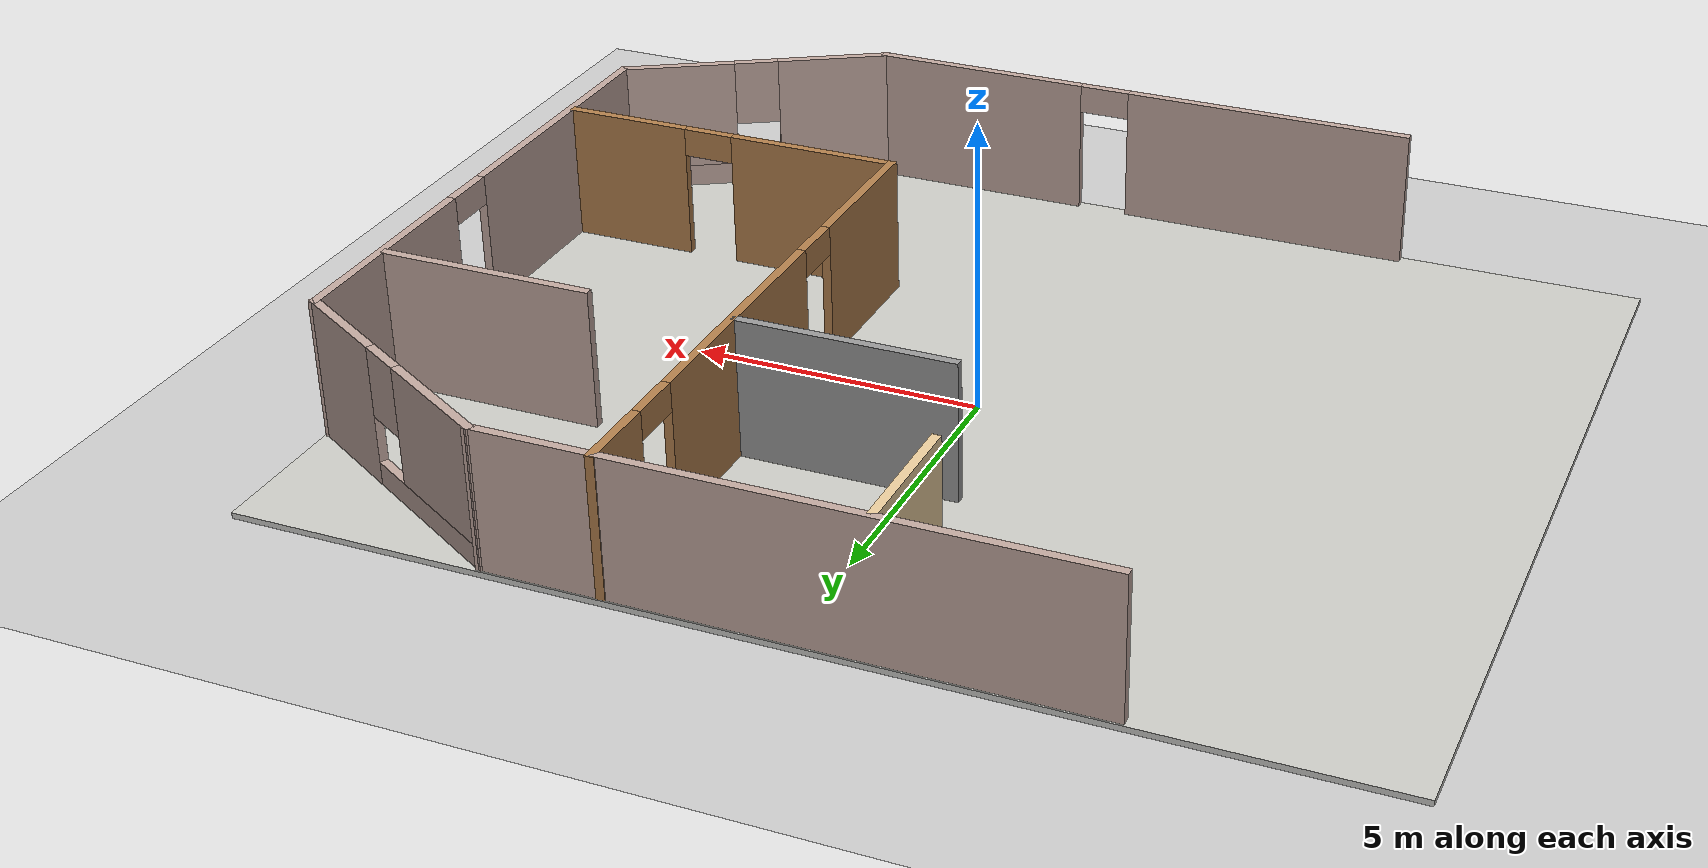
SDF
<sdf version="1.6">
 <world name="default">
  <model name="ground_plane">
   <static>1</static>
   <link name="link">
    <collision name="collision">
     <geometry><plane><normal>0 0 1</normal><size>100 100</size></plane></geometry>
     <surface><friction><ode><mu>100</mu><mu2>50</mu2></ode></friction></surface>
    </collision>
    <visual name="visual">
     <cast_shadows>0</cast_shadows>
     <geometry><plane><normal>0 0 1</normal><size>100 100</size></plane></geometry>
     <material>
      <script><uri>file://media/materials/scripts/gazebo.material</uri><name>Gazebo/Grey</name></script>
     </material>
    </visual>
   </link>
  </model>
  <model name="new_floor">
   <link name="Floor_16">
    <pose>1e-06 0 0 0 -0 0</pose>
    <inertial>
     <mass>1</mass>
     <inertia><ixx>1</ixx><ixy>0</ixy><ixz>0</ixz><iyy>1</iyy><iyz>0</iyz><izz>1</izz></inertia>
    </inertial>
    <visual name="Floor_16_Visual">
     <pose>0 0 0.05 0 -0 0</pose>
     <geometry><box><size>18.4553 14.9049 0.1</size></box></geometry>
     <material>
      <script><uri>file://media/materials/scripts/gazebo.material</uri><name>Gazebo/CeilingTiled</name></script>
      <ambient>0.5 0.5 0.5 1</ambient>
      <shader type="pixel"><normal_map>__default__</normal_map></shader>
      <diffuse>0.5 0.5 0.5 1</diffuse>
      <specular>0 0 0 1</specular>
      <emissive>0 0 0 1</emissive>
     </material>
    </visual>
    <collision name="Floor_16_Collision">
     <pose>0 0 0.05 0 -0 0</pose>
     <geometry><box><size>18.4553 14.9049 0.1</size></box></geometry>
     <surface>
      <friction>
       <ode><mu>1</mu><mu2>1</mu2><fdir1>0 0 0</fdir1><slip1>0</slip1><slip2>0</slip2></ode>
       <torsional>
        <coefficient>1</coefficient>
        <patch_radius>0</patch_radius>
        <surface_radius>0</surface_radius>
        <use_patch_radius>1</use_patch_radius>
        <ode><slip>0</slip></ode>
       </torsional>
      </friction>
      <bounce><restitution_coefficient>0</restitution_coefficient><threshold>1e+06</threshold></bounce>
      <contact>
       <collide_without_contact>0</collide_without_contact>
       <collide_without_contact_bitmask>1</collide_without_contact_bitmask>
       <collide_bitmask>1</collide_bitmask>
       <ode>
        <soft_cfm>0</soft_cfm>
        <soft_erp>0.2</soft_erp>
        <kp>1e+13</kp>
        <kd>1</kd>
        <max_vel>0.01</max_vel>
        <min_depth>0</min_depth>
       </ode>
       <bullet>
        <split_impulse>1</split_impulse>
        <split_impulse_penetration_threshold>-0.01</split_impulse_penetration_threshold>
        <soft_cfm>0</soft_cfm>
        <soft_erp>0.2</soft_erp>
        <kp>1e+13</kp>
        <kd>1</kd>
       </bullet>
      </contact>
     </surface>
    </collision>
   </link>
   <link name="Wall_25">
    <pose>1e-06 -7.35 0 0 -0 0</pose>
    <visual name="Wall_25_Visual_0">
     <pose>-2.41987 0 1.25 0 -0 0</pose>
     <geometry><box><size>5.16027 0.15 2.5</size></box></geometry>
     <material>
      <script><uri>file://media/materials/scripts/gazebo.material</uri><name>Gazebo/Grey</name></script>
      <ambient>0.760784 0.662745 0.627451 1</ambient>
      <shader type="pixel"/>
      <diffuse>0.7 0.7 0.7 1</diffuse>
      <specular>0.01 0.01 0.01 1</specular>
      <emissive>0 0 0 1</emissive>
     </material>
    </visual>
    <visual name="Wall_25_Visual_1">
     <pose>3.03013 0 1.25 0 -0 0</pose>
     <geometry><box><size>3.93973 0.15 2.5</size></box></geometry>
     <material>
      <script><uri>file://media/materials/scripts/gazebo.material</uri><name>Gazebo/Grey</name></script>
      <ambient>0.760784 0.662745 0.627451 1</ambient>
      <shader type="pixel"/>
      <diffuse>0.7 0.7 0.7 1</diffuse>
      <specular>0.01 0.01 0.01 1</specular>
      <emissive>0 0 0 1</emissive>
     </material>
    </visual>
    <visual name="Wall_25_Visual_2">
     <pose>0.610269 0 2.25 0 -0 0</pose>
     <geometry><box><size>0.9 0.15 0.5</size></box></geometry>
     <material>
      <script><uri>file://media/materials/scripts/gazebo.material</uri><name>Gazebo/Grey</name></script>
      <ambient>0.760784 0.662745 0.627451 1</ambient>
      <shader type="pixel"/>
      <diffuse>0.7 0.7 0.7 1</diffuse>
      <specular>0.01 0.01 0.01 1</specular>
      <emissive>0 0 0 1</emissive>
     </material>
    </visual>
    <collision name="Wall_25_Collision_0">
     <pose>-2.41987 0 1.25 0 -0 0</pose>
     <geometry><box><size>5.16027 0.15 2.5</size></box></geometry>
     <surface>
      <friction>
       <ode><mu>1</mu><mu2>1</mu2><fdir1>0 0 0</fdir1><slip1>0</slip1><slip2>0</slip2></ode>
       <torsional>
        <coefficient>1</coefficient>
        <patch_radius>0</patch_radius>
        <surface_radius>0</surface_radius>
        <use_patch_radius>1</use_patch_radius>
        <ode><slip>0</slip></ode>
       </torsional>
      </friction>
      <bounce><restitution_coefficient>0</restitution_coefficient><threshold>1e+06</threshold></bounce>
      <contact>
       <collide_without_contact>0</collide_without_contact>
       <collide_without_contact_bitmask>1</collide_without_contact_bitmask>
       <collide_bitmask>1</collide_bitmask>
       <ode>
        <soft_cfm>0</soft_cfm>
        <soft_erp>0.2</soft_erp>
        <kp>1e+13</kp>
        <kd>1</kd>
        <max_vel>0.01</max_vel>
        <min_depth>0</min_depth>
       </ode>
       <bullet>
        <split_impulse>1</split_impulse>
        <split_impulse_penetration_threshold>-0.01</split_impulse_penetration_threshold>
        <soft_cfm>0</soft_cfm>
        <soft_erp>0.2</soft_erp>
        <kp>1e+13</kp>
        <kd>1</kd>
       </bullet>
      </contact>
     </surface>
    </collision>
    <collision name="Wall_25_Collision_1">
     <pose>3.03013 0 1.25 0 -0 0</pose>
     <geometry><box><size>3.93973 0.15 2.5</size></box></geometry>
     <surface>
      <friction>
       <ode><mu>1</mu><mu2>1</mu2><fdir1>0 0 0</fdir1><slip1>0</slip1><slip2>0</slip2></ode>
       <torsional>
        <coefficient>1</coefficient>
        <patch_radius>0</patch_radius>
        <surface_radius>0</surface_radius>
        <use_patch_radius>1</use_patch_radius>
        <ode><slip>0</slip></ode>
       </torsional>
      </friction>
      <bounce><restitution_coefficient>0</restitution_coefficient><threshold>1e+06</threshold></bounce>
      <contact>
       <collide_without_contact>0</collide_without_contact>
       <collide_without_contact_bitmask>1</collide_without_contact_bitmask>
       <collide_bitmask>1</collide_bitmask>
       <ode>
        <soft_cfm>0</soft_cfm>
        <soft_erp>0.2</soft_erp>
        <kp>1e+13</kp>
        <kd>1</kd>
        <max_vel>0.01</max_vel>
        <min_depth>0</min_depth>
       </ode>
       <bullet>
        <split_impulse>1</split_impulse>
        <split_impulse_penetration_threshold>-0.01</split_impulse_penetration_threshold>
        <soft_cfm>0</soft_cfm>
        <soft_erp>0.2</soft_erp>
        <kp>1e+13</kp>
        <kd>1</kd>
       </bullet>
      </contact>
     </surface>
    </collision>
    <collision name="Wall_25_Collision_2">
     <pose>0.610269 0 2.25 0 -0 0</pose>
     <geometry><box><size>0.9 0.15 0.5</size></box></geometry>
     <surface>
      <friction>
       <ode><mu>1</mu><mu2>1</mu2><fdir1>0 0 0</fdir1><slip1>0</slip1><slip2>0</slip2></ode>
       <torsional>
        <coefficient>1</coefficient>
        <patch_radius>0</patch_radius>
        <surface_radius>0</surface_radius>
        <use_patch_radius>1</use_patch_radius>
        <ode><slip>0</slip></ode>
       </torsional>
      </friction>
      <bounce><restitution_coefficient>0</restitution_coefficient><threshold>1e+06</threshold></bounce>
      <contact>
       <collide_without_contact>0</collide_without_contact>
       <collide_without_contact_bitmask>1</collide_without_contact_bitmask>
       <collide_bitmask>1</collide_bitmask>
       <ode>
        <soft_cfm>0</soft_cfm>
        <soft_erp>0.2</soft_erp>
        <kp>1e+13</kp>
        <kd>1</kd>
        <max_vel>0.01</max_vel>
        <min_depth>0</min_depth>
       </ode>
       <bullet>
        <split_impulse>1</split_impulse>
        <split_impulse_penetration_threshold>-0.01</split_impulse_penetration_threshold>
        <soft_cfm>0</soft_cfm>
        <soft_erp>0.2</soft_erp>
        <kp>1e+13</kp>
        <kd>1</kd>
       </bullet>
      </contact>
     </surface>
    </collision>
   </link>
   <link name="Wall_26">
    <pose>7.02511 -6.1375 0 0 -0 0.523599</pose>
    <visual name="Wall_26_Visual_0">
     <pose>-1.44732 0 1.25 0 -0 0</pose>
     <geometry><box><size>2.10536 0.15 2.5</size></box></geometry>
     <material>
      <script><uri>file://media/materials/scripts/gazebo.material</uri><name>Gazebo/Grey</name></script>
      <ambient>0.760784 0.662745 0.627451 1</ambient>
      <shader type="pixel"/>
      <diffuse>0.7 0.7 0.7 1</diffuse>
      <specular>0.01 0.01 0.01 1</specular>
      <emissive>0 0 0 1</emissive>
     </material>
    </visual>
    <visual name="Wall_26_Visual_1">
     <pose>1.05268 0 0.25 0 -0 0</pose>
     <geometry><box><size>2.89464 0.15 0.5</size></box></geometry>
     <material>
      <script><uri>file://media/materials/scripts/gazebo.material</uri><name>Gazebo/Grey</name></script>
      <ambient>0.760784 0.662745 0.627451 1</ambient>
      <shader type="pixel"/>
      <diffuse>0.7 0.7 0.7 1</diffuse>
      <specular>0.01 0.01 0.01 1</specular>
      <emissive>0 0 0 1</emissive>
     </material>
    </visual>
    <visual name="Wall_26_Visual_2">
     <pose>1.45268 0 1.5 0 -0 0</pose>
     <geometry><box><size>2.09464 0.15 2</size></box></geometry>
     <material>
      <script><uri>file://media/materials/scripts/gazebo.material</uri><name>Gazebo/Grey</name></script>
      <ambient>0.760784 0.662745 0.627451 1</ambient>
      <shader type="pixel"/>
      <diffuse>0.7 0.7 0.7 1</diffuse>
      <specular>0.01 0.01 0.01 1</specular>
      <emissive>0 0 0 1</emissive>
     </material>
    </visual>
    <visual name="Wall_26_Visual_3">
     <pose>0.005362 0 1.9 0 -0 0</pose>
     <geometry><box><size>0.8 0.15 1.2</size></box></geometry>
     <material>
      <script><uri>file://media/materials/scripts/gazebo.material</uri><name>Gazebo/Grey</name></script>
      <ambient>0.760784 0.662745 0.627451 1</ambient>
      <shader type="pixel"/>
      <diffuse>0.7 0.7 0.7 1</diffuse>
      <specular>0.01 0.01 0.01 1</specular>
      <emissive>0 0 0 1</emissive>
     </material>
    </visual>
    <collision name="Wall_26_Collision_0">
     <pose>-1.44732 0 1.25 0 -0 0</pose>
     <geometry><box><size>2.10536 0.15 2.5</size></box></geometry>
     <surface>
      <friction>
       <ode><mu>1</mu><mu2>1</mu2><fdir1>0 0 0</fdir1><slip1>0</slip1><slip2>0</slip2></ode>
       <torsional>
        <coefficient>1</coefficient>
        <patch_radius>0</patch_radius>
        <surface_radius>0</surface_radius>
        <use_patch_radius>1</use_patch_radius>
        <ode><slip>0</slip></ode>
       </torsional>
      </friction>
      <bounce><restitution_coefficient>0</restitution_coefficient><threshold>1e+06</threshold></bounce>
      <contact>
       <collide_without_contact>0</collide_without_contact>
       <collide_without_contact_bitmask>1</collide_without_contact_bitmask>
       <collide_bitmask>1</collide_bitmask>
       <ode>
        <soft_cfm>0</soft_cfm>
        <soft_erp>0.2</soft_erp>
        <kp>1e+13</kp>
        <kd>1</kd>
        <max_vel>0.01</max_vel>
        <min_depth>0</min_depth>
       </ode>
       <bullet>
        <split_impulse>1</split_impulse>
        <split_impulse_penetration_threshold>-0.01</split_impulse_penetration_threshold>
        <soft_cfm>0</soft_cfm>
        <soft_erp>0.2</soft_erp>
        <kp>1e+13</kp>
        <kd>1</kd>
       </bullet>
      </contact>
     </surface>
    </collision>
    <collision name="Wall_26_Collision_1">
     <pose>1.05268 0 0.25 0 -0 0</pose>
     <geometry><box><size>2.89464 0.15 0.5</size></box></geometry>
     <surface>
      <friction>
       <ode><mu>1</mu><mu2>1</mu2><fdir1>0 0 0</fdir1><slip1>0</slip1><slip2>0</slip2></ode>
       <torsional>
        <coefficient>1</coefficient>
        <patch_radius>0</patch_radius>
        <surface_radius>0</surface_radius>
        <use_patch_radius>1</use_patch_radius>
        <ode><slip>0</slip></ode>
       </torsional>
      </friction>
      <bounce><restitution_coefficient>0</restitution_coefficient><threshold>1e+06</threshold></bounce>
      <contact>
       <collide_without_contact>0</collide_without_contact>
       <collide_without_contact_bitmask>1</collide_without_contact_bitmask>
       <collide_bitmask>1</collide_bitmask>
       <ode>
        <soft_cfm>0</soft_cfm>
        <soft_erp>0.2</soft_erp>
        <kp>1e+13</kp>
        <kd>1</kd>
        <max_vel>0.01</max_vel>
        <min_depth>0</min_depth>
       </ode>
       <bullet>
        <split_impulse>1</split_impulse>
        <split_impulse_penetration_threshold>-0.01</split_impulse_penetration_threshold>
        <soft_cfm>0</soft_cfm>
        <soft_erp>0.2</soft_erp>
        <kp>1e+13</kp>
        <kd>1</kd>
       </bullet>
      </contact>
     </surface>
    </collision>
    <collision name="Wall_26_Collision_2">
     <pose>1.45268 0 1.5 0 -0 0</pose>
     <geometry><box><size>2.09464 0.15 2</size></box></geometry>
     <surface>
      <friction>
       <ode><mu>1</mu><mu2>1</mu2><fdir1>0 0 0</fdir1><slip1>0</slip1><slip2>0</slip2></ode>
       <torsional>
        <coefficient>1</coefficient>
        <patch_radius>0</patch_radius>
        <surface_radius>0</surface_radius>
        <use_patch_radius>1</use_patch_radius>
        <ode><slip>0</slip></ode>
       </torsional>
      </friction>
      <bounce><restitution_coefficient>0</restitution_coefficient><threshold>1e+06</threshold></bounce>
      <contact>
       <collide_without_contact>0</collide_without_contact>
       <collide_without_contact_bitmask>1</collide_without_contact_bitmask>
       <collide_bitmask>1</collide_bitmask>
       <ode>
        <soft_cfm>0</soft_cfm>
        <soft_erp>0.2</soft_erp>
        <kp>1e+13</kp>
        <kd>1</kd>
        <max_vel>0.01</max_vel>
        <min_depth>0</min_depth>
       </ode>
       <bullet>
        <split_impulse>1</split_impulse>
        <split_impulse_penetration_threshold>-0.01</split_impulse_penetration_threshold>
        <soft_cfm>0</soft_cfm>
        <soft_erp>0.2</soft_erp>
        <kp>1e+13</kp>
        <kd>1</kd>
       </bullet>
      </contact>
     </surface>
    </collision>
    <collision name="Wall_26_Collision_3">
     <pose>0.005362 0 1.9 0 -0 0</pose>
     <geometry><box><size>0.8 0.15 1.2</size></box></geometry>
     <surface>
      <friction>
       <ode><mu>1</mu><mu2>1</mu2><fdir1>0 0 0</fdir1><slip1>0</slip1><slip2>0</slip2></ode>
       <torsional>
        <coefficient>1</coefficient>
        <patch_radius>0</patch_radius>
        <surface_radius>0</surface_radius>
        <use_patch_radius>1</use_patch_radius>
        <ode><slip>0</slip></ode>
       </torsional>
      </friction>
      <bounce><restitution_coefficient>0</restitution_coefficient><threshold>1e+06</threshold></bounce>
      <contact>
       <collide_without_contact>0</collide_without_contact>
       <collide_without_contact_bitmask>1</collide_without_contact_bitmask>
       <collide_bitmask>1</collide_bitmask>
       <ode>
        <soft_cfm>0</soft_cfm>
        <soft_erp>0.2</soft_erp>
        <kp>1e+13</kp>
        <kd>1</kd>
        <max_vel>0.01</max_vel>
        <min_depth>0</min_depth>
       </ode>
       <bullet>
        <split_impulse>1</split_impulse>
        <split_impulse_penetration_threshold>-0.01</split_impulse_penetration_threshold>
        <soft_cfm>0</soft_cfm>
        <soft_erp>0.2</soft_erp>
        <kp>1e+13</kp>
        <kd>1</kd>
       </bullet>
      </contact>
     </surface>
    </collision>
   </link>
   <link name="Wall_27">
    <pose>9.12522 0 0 0 -0 1.5708</pose>
    <visual name="Wall_27_Visual_0">
     <pose>-2.45419 0 1.25 0 -0 0</pose>
     <geometry><box><size>5.09162 0.15 2.5</size></box></geometry>
     <material>
      <script><uri>file://media/materials/scripts/gazebo.material</uri><name>Gazebo/Grey</name></script>
      <ambient>0.760784 0.662745 0.627451 1</ambient>
      <shader type="pixel"/>
      <diffuse>0.7 0.7 0.7 1</diffuse>
      <specular>0.01 0.01 0.01 1</specular>
      <emissive>0 0 0 1</emissive>
     </material>
    </visual>
    <visual name="Wall_27_Visual_1">
     <pose>2.99581 0 1.25 0 -0 0</pose>
     <geometry><box><size>4.00838 0.15 2.5</size></box></geometry>
     <material>
      <script><uri>file://media/materials/scripts/gazebo.material</uri><name>Gazebo/Grey</name></script>
      <ambient>0.760784 0.662745 0.627451 1</ambient>
      <shader type="pixel"/>
      <diffuse>0.7 0.7 0.7 1</diffuse>
      <specular>0.01 0.01 0.01 1</specular>
      <emissive>0 0 0 1</emissive>
     </material>
    </visual>
    <visual name="Wall_27_Visual_2">
     <pose>0.541623 0 2.25 0 -0 0</pose>
     <geometry><box><size>0.9 0.15 0.5</size></box></geometry>
     <material>
      <script><uri>file://media/materials/scripts/gazebo.material</uri><name>Gazebo/Grey</name></script>
      <ambient>0.760784 0.662745 0.627451 1</ambient>
      <shader type="pixel"/>
      <diffuse>0.7 0.7 0.7 1</diffuse>
      <specular>0.01 0.01 0.01 1</specular>
      <emissive>0 0 0 1</emissive>
     </material>
    </visual>
    <collision name="Wall_27_Collision_0">
     <pose>-2.45419 0 1.25 0 -0 0</pose>
     <geometry><box><size>5.09162 0.15 2.5</size></box></geometry>
     <surface>
      <friction>
       <ode><mu>1</mu><mu2>1</mu2><fdir1>0 0 0</fdir1><slip1>0</slip1><slip2>0</slip2></ode>
       <torsional>
        <coefficient>1</coefficient>
        <patch_radius>0</patch_radius>
        <surface_radius>0</surface_radius>
        <use_patch_radius>1</use_patch_radius>
        <ode><slip>0</slip></ode>
       </torsional>
      </friction>
      <bounce><restitution_coefficient>0</restitution_coefficient><threshold>1e+06</threshold></bounce>
      <contact>
       <collide_without_contact>0</collide_without_contact>
       <collide_without_contact_bitmask>1</collide_without_contact_bitmask>
       <collide_bitmask>1</collide_bitmask>
       <ode>
        <soft_cfm>0</soft_cfm>
        <soft_erp>0.2</soft_erp>
        <kp>1e+13</kp>
        <kd>1</kd>
        <max_vel>0.01</max_vel>
        <min_depth>0</min_depth>
       </ode>
       <bullet>
        <split_impulse>1</split_impulse>
        <split_impulse_penetration_threshold>-0.01</split_impulse_penetration_threshold>
        <soft_cfm>0</soft_cfm>
        <soft_erp>0.2</soft_erp>
        <kp>1e+13</kp>
        <kd>1</kd>
       </bullet>
      </contact>
     </surface>
    </collision>
    <collision name="Wall_27_Collision_1">
     <pose>2.99581 0 1.25 0 -0 0</pose>
     <geometry><box><size>4.00838 0.15 2.5</size></box></geometry>
     <surface>
      <friction>
       <ode><mu>1</mu><mu2>1</mu2><fdir1>0 0 0</fdir1><slip1>0</slip1><slip2>0</slip2></ode>
       <torsional>
        <coefficient>1</coefficient>
        <patch_radius>0</patch_radius>
        <surface_radius>0</surface_radius>
        <use_patch_radius>1</use_patch_radius>
        <ode><slip>0</slip></ode>
       </torsional>
      </friction>
      <bounce><restitution_coefficient>0</restitution_coefficient><threshold>1e+06</threshold></bounce>
      <contact>
       <collide_without_contact>0</collide_without_contact>
       <collide_without_contact_bitmask>1</collide_without_contact_bitmask>
       <collide_bitmask>1</collide_bitmask>
       <ode>
        <soft_cfm>0</soft_cfm>
        <soft_erp>0.2</soft_erp>
        <kp>1e+13</kp>
        <kd>1</kd>
        <max_vel>0.01</max_vel>
        <min_depth>0</min_depth>
       </ode>
       <bullet>
        <split_impulse>1</split_impulse>
        <split_impulse_penetration_threshold>-0.01</split_impulse_penetration_threshold>
        <soft_cfm>0</soft_cfm>
        <soft_erp>0.2</soft_erp>
        <kp>1e+13</kp>
        <kd>1</kd>
       </bullet>
      </contact>
     </surface>
    </collision>
    <collision name="Wall_27_Collision_2">
     <pose>0.541623 0 2.25 0 -0 0</pose>
     <geometry><box><size>0.9 0.15 0.5</size></box></geometry>
     <surface>
      <friction>
       <ode><mu>1</mu><mu2>1</mu2><fdir1>0 0 0</fdir1><slip1>0</slip1><slip2>0</slip2></ode>
       <torsional>
        <coefficient>1</coefficient>
        <patch_radius>0</patch_radius>
        <surface_radius>0</surface_radius>
        <use_patch_radius>1</use_patch_radius>
        <ode><slip>0</slip></ode>
       </torsional>
      </friction>
      <bounce><restitution_coefficient>0</restitution_coefficient><threshold>1e+06</threshold></bounce>
      <contact>
       <collide_without_contact>0</collide_without_contact>
       <collide_without_contact_bitmask>1</collide_without_contact_bitmask>
       <collide_bitmask>1</collide_bitmask>
       <ode>
        <soft_cfm>0</soft_cfm>
        <soft_erp>0.2</soft_erp>
        <kp>1e+13</kp>
        <kd>1</kd>
        <max_vel>0.01</max_vel>
        <min_depth>0</min_depth>
       </ode>
       <bullet>
        <split_impulse>1</split_impulse>
        <split_impulse_penetration_threshold>-0.01</split_impulse_penetration_threshold>
        <soft_cfm>0</soft_cfm>
        <soft_erp>0.2</soft_erp>
        <kp>1e+13</kp>
        <kd>1</kd>
       </bullet>
      </contact>
     </surface>
    </collision>
   </link>
   <link name="Wall_28">
    <pose>7.02511 6.1375 0 0 -0 2.61799</pose>
    <visual name="Wall_28_Visual_2">
     <pose>1.36069 0 1.5 0 -0 0</pose>
     <geometry><box><size>2.27863 0.15 2</size></box></geometry>
     <material>
      <script><uri>file://media/materials/scripts/gazebo.material</uri><name>Gazebo/Grey</name></script>
      <ambient>0.760784 0.662745 0.627451 1</ambient>
      <shader type="pixel"/>
      <diffuse>0.7 0.7 0.7 1</diffuse>
      <specular>0.01 0.01 0.01 1</specular>
      <emissive>0 0 0 1</emissive>
     </material>
    </visual>
    <visual name="Wall_28_Visual_0">
     <pose>-1.53931 0 1.25 0 -0 0</pose>
     <geometry><box><size>1.92137 0.15 2.5</size></box></geometry>
     <material>
      <script><uri>file://media/materials/scripts/gazebo.material</uri><name>Gazebo/Grey</name></script>
      <ambient>0.760784 0.662745 0.627451 1</ambient>
      <shader type="pixel"/>
      <diffuse>0.7 0.7 0.7 1</diffuse>
      <specular>0.01 0.01 0.01 1</specular>
      <emissive>0 0 0 1</emissive>
     </material>
    </visual>
    <visual name="Wall_28_Visual_1">
     <pose>0.960687 0 0.25 0 -0 0</pose>
     <geometry><box><size>3.07863 0.15 0.5</size></box></geometry>
     <material>
      <script><uri>file://media/materials/scripts/gazebo.material</uri><name>Gazebo/Grey</name></script>
      <ambient>0.760784 0.662745 0.627451 1</ambient>
      <shader type="pixel"/>
      <diffuse>0.7 0.7 0.7 1</diffuse>
      <specular>0.01 0.01 0.01 1</specular>
      <emissive>0 0 0 1</emissive>
     </material>
    </visual>
    <visual name="Wall_28_Visual_3">
     <pose>-0.178626 0 1.9 0 -0 0</pose>
     <geometry><box><size>0.8 0.15 1.2</size></box></geometry>
     <material>
      <script><uri>file://media/materials/scripts/gazebo.material</uri><name>Gazebo/Grey</name></script>
      <ambient>0.760784 0.662745 0.627451 1</ambient>
      <shader type="pixel"/>
      <diffuse>0.7 0.7 0.7 1</diffuse>
      <specular>0.01 0.01 0.01 1</specular>
      <emissive>0 0 0 1</emissive>
     </material>
    </visual>
    <collision name="Wall_28_Collision_0">
     <pose>-1.53931 0 1.25 0 -0 0</pose>
     <geometry><box><size>1.92137 0.15 2.5</size></box></geometry>
     <surface>
      <friction>
       <ode><mu>1</mu><mu2>1</mu2><fdir1>0 0 0</fdir1><slip1>0</slip1><slip2>0</slip2></ode>
       <torsional>
        <coefficient>1</coefficient>
        <patch_radius>0</patch_radius>
        <surface_radius>0</surface_radius>
        <use_patch_radius>1</use_patch_radius>
        <ode><slip>0</slip></ode>
       </torsional>
      </friction>
      <bounce><restitution_coefficient>0</restitution_coefficient><threshold>1e+06</threshold></bounce>
      <contact>
       <collide_without_contact>0</collide_without_contact>
       <collide_without_contact_bitmask>1</collide_without_contact_bitmask>
       <collide_bitmask>1</collide_bitmask>
       <ode>
        <soft_cfm>0</soft_cfm>
        <soft_erp>0.2</soft_erp>
        <kp>1e+13</kp>
        <kd>1</kd>
        <max_vel>0.01</max_vel>
        <min_depth>0</min_depth>
       </ode>
       <bullet>
        <split_impulse>1</split_impulse>
        <split_impulse_penetration_threshold>-0.01</split_impulse_penetration_threshold>
        <soft_cfm>0</soft_cfm>
        <soft_erp>0.2</soft_erp>
        <kp>1e+13</kp>
        <kd>1</kd>
       </bullet>
      </contact>
     </surface>
    </collision>
    <collision name="Wall_28_Collision_1">
     <pose>0.960687 0 0.25 0 -0 0</pose>
     <geometry><box><size>3.07863 0.15 0.5</size></box></geometry>
     <surface>
      <friction>
       <ode><mu>1</mu><mu2>1</mu2><fdir1>0 0 0</fdir1><slip1>0</slip1><slip2>0</slip2></ode>
       <torsional>
        <coefficient>1</coefficient>
        <patch_radius>0</patch_radius>
        <surface_radius>0</surface_radius>
        <use_patch_radius>1</use_patch_radius>
        <ode><slip>0</slip></ode>
       </torsional>
      </friction>
      <bounce><restitution_coefficient>0</restitution_coefficient><threshold>1e+06</threshold></bounce>
      <contact>
       <collide_without_contact>0</collide_without_contact>
       <collide_without_contact_bitmask>1</collide_without_contact_bitmask>
       <collide_bitmask>1</collide_bitmask>
       <ode>
        <soft_cfm>0</soft_cfm>
        <soft_erp>0.2</soft_erp>
        <kp>1e+13</kp>
        <kd>1</kd>
        <max_vel>0.01</max_vel>
        <min_depth>0</min_depth>
       </ode>
       <bullet>
        <split_impulse>1</split_impulse>
        <split_impulse_penetration_threshold>-0.01</split_impulse_penetration_threshold>
        <soft_cfm>0</soft_cfm>
        <soft_erp>0.2</soft_erp>
        <kp>1e+13</kp>
        <kd>1</kd>
       </bullet>
      </contact>
     </surface>
    </collision>
    <collision name="Wall_28_Collision_2">
     <pose>1.36069 0 1.5 0 -0 0</pose>
     <geometry><box><size>2.27863 0.15 2</size></box></geometry>
     <surface>
      <friction>
       <ode><mu>1</mu><mu2>1</mu2><fdir1>0 0 0</fdir1><slip1>0</slip1><slip2>0</slip2></ode>
       <torsional>
        <coefficient>1</coefficient>
        <patch_radius>0</patch_radius>
        <surface_radius>0</surface_radius>
        <use_patch_radius>1</use_patch_radius>
        <ode><slip>0</slip></ode>
       </torsional>
      </friction>
      <bounce><restitution_coefficient>0</restitution_coefficient><threshold>1e+06</threshold></bounce>
      <contact>
       <collide_without_contact>0</collide_without_contact>
       <collide_without_contact_bitmask>1</collide_without_contact_bitmask>
       <collide_bitmask>1</collide_bitmask>
       <ode>
        <soft_cfm>0</soft_cfm>
        <soft_erp>0.2</soft_erp>
        <kp>1e+13</kp>
        <kd>1</kd>
        <max_vel>0.01</max_vel>
        <min_depth>0</min_depth>
       </ode>
       <bullet>
        <split_impulse>1</split_impulse>
        <split_impulse_penetration_threshold>-0.01</split_impulse_penetration_threshold>
        <soft_cfm>0</soft_cfm>
        <soft_erp>0.2</soft_erp>
        <kp>1e+13</kp>
        <kd>1</kd>
       </bullet>
      </contact>
     </surface>
    </collision>
    <collision name="Wall_28_Collision_3">
     <pose>-0.178626 0 1.9 0 -0 0</pose>
     <geometry><box><size>0.8 0.15 1.2</size></box></geometry>
     <surface>
      <friction>
       <ode><mu>1</mu><mu2>1</mu2><fdir1>0 0 0</fdir1><slip1>0</slip1><slip2>0</slip2></ode>
       <torsional>
        <coefficient>1</coefficient>
        <patch_radius>0</patch_radius>
        <surface_radius>0</surface_radius>
        <use_patch_radius>1</use_patch_radius>
        <ode><slip>0</slip></ode>
       </torsional>
      </friction>
      <bounce><restitution_coefficient>0</restitution_coefficient><threshold>1e+06</threshold></bounce>
      <contact>
       <collide_without_contact>0</collide_without_contact>
       <collide_without_contact_bitmask>1</collide_without_contact_bitmask>
       <collide_bitmask>1</collide_bitmask>
       <ode>
        <soft_cfm>0</soft_cfm>
        <soft_erp>0.2</soft_erp>
        <kp>1e+13</kp>
        <kd>1</kd>
        <max_vel>0.01</max_vel>
        <min_depth>0</min_depth>
       </ode>
       <bullet>
        <split_impulse>1</split_impulse>
        <split_impulse_penetration_threshold>-0.01</split_impulse_penetration_threshold>
        <soft_cfm>0</soft_cfm>
        <soft_erp>0.2</soft_erp>
        <kp>1e+13</kp>
        <kd>1</kd>
       </bullet>
      </contact>
     </surface>
    </collision>
   </link>
   <link name="Wall_29">
    <pose>1e-06 7.35 0 0 -0 3.14159</pose>
    <visual name="Wall_29_Visual">
     <pose>0 0 1.25 0 -0 0</pose>
     <geometry><box><size>10 0.15 2.5</size></box></geometry>
     <material>
      <script><uri>file://media/materials/scripts/gazebo.material</uri><name>Gazebo/Grey</name></script>
      <ambient>0.760784 0.662745 0.627451 1</ambient>
      <shader type="pixel"/>
      <diffuse>0.7 0.7 0.7 1</diffuse>
      <specular>0.01 0.01 0.01 1</specular>
      <emissive>0 0 0 1</emissive>
     </material>
    </visual>
    <collision name="Wall_29_Collision">
     <pose>0 0 1.25 0 -0 0</pose>
     <geometry><box><size>10 0.15 2.5</size></box></geometry>
     <surface>
      <friction>
       <ode><mu>1</mu><mu2>1</mu2><fdir1>0 0 0</fdir1><slip1>0</slip1><slip2>0</slip2></ode>
       <torsional>
        <coefficient>1</coefficient>
        <patch_radius>0</patch_radius>
        <surface_radius>0</surface_radius>
        <use_patch_radius>1</use_patch_radius>
        <ode><slip>0</slip></ode>
       </torsional>
      </friction>
      <bounce><restitution_coefficient>0</restitution_coefficient><threshold>1e+06</threshold></bounce>
      <contact>
       <collide_without_contact>0</collide_without_contact>
       <collide_without_contact_bitmask>1</collide_without_contact_bitmask>
       <collide_bitmask>1</collide_bitmask>
       <ode>
        <soft_cfm>0</soft_cfm>
        <soft_erp>0.2</soft_erp>
        <kp>1e+13</kp>
        <kd>1</kd>
        <max_vel>0.01</max_vel>
        <min_depth>0</min_depth>
       </ode>
       <bullet>
        <split_impulse>1</split_impulse>
        <split_impulse_penetration_threshold>-0.01</split_impulse_penetration_threshold>
        <soft_cfm>0</soft_cfm>
        <soft_erp>0.2</soft_erp>
        <kp>1e+13</kp>
        <kd>1</kd>
       </bullet>
      </contact>
     </surface>
    </collision>
   </link>
   <link name="Wall_35">
    <pose>2.92425 2.19223 0 0 0 -1.5708</pose>
    <visual name="Wall_35_Visual_0">
     <pose>-4.56341 0 1.25 0 -0 0</pose>
     <geometry><box><size>1.37318 0.15 2.5</size></box></geometry>
     <material>
      <script><uri>file://media/materials/scripts/gazebo.material</uri><name>Gazebo/Wood</name></script>
      <ambient>1 1 1 1</ambient>
      <shader type="pixel"/>
      <diffuse>1 1 1 1</diffuse>
      <specular>0.2 0.2 0.2 1</specular>
      <emissive>0 0 0 1</emissive>
     </material>
    </visual>
    <visual name="Wall_35_Visual_1">
     <pose>-0.6737 0 1.25 0 -0 0</pose>
     <geometry><box><size>4.60624 0.15 2.5</size></box></geometry>
     <material>
      <script><uri>file://media/materials/scripts/gazebo.material</uri><name>Gazebo/Wood</name></script>
      <ambient>1 1 1 1</ambient>
      <shader type="pixel"/>
      <diffuse>1 1 1 1</diffuse>
      <specular>0.2 0.2 0.2 1</specular>
      <emissive>0 0 0 1</emissive>
     </material>
    </visual>
    <visual name="Wall_35_Visual_2">
     <pose>3.88971 0 1.25 0 -0 0</pose>
     <geometry><box><size>2.72058 0.15 2.5</size></box></geometry>
     <material>
      <script><uri>file://media/materials/scripts/gazebo.material</uri><name>Gazebo/Wood</name></script>
      <ambient>1 1 1 1</ambient>
      <shader type="pixel"/>
      <diffuse>1 1 1 1</diffuse>
      <specular>0.2 0.2 0.2 1</specular>
      <emissive>0 0 0 1</emissive>
     </material>
    </visual>
    <visual name="Wall_35_Visual_3">
     <pose>-3.42682 0 2.25 0 -0 0</pose>
     <geometry><box><size>0.9 0.15 0.5</size></box></geometry>
     <material>
      <script><uri>file://media/materials/scripts/gazebo.material</uri><name>Gazebo/Wood</name></script>
      <ambient>1 1 1 1</ambient>
      <shader type="pixel"/>
      <diffuse>1 1 1 1</diffuse>
      <specular>0.2 0.2 0.2 1</specular>
      <emissive>0 0 0 1</emissive>
     </material>
    </visual>
    <visual name="Wall_35_Visual_4">
     <pose>2.07942 0 2.25 0 -0 0</pose>
     <geometry><box><size>0.9 0.15 0.5</size></box></geometry>
     <material>
      <script><uri>file://media/materials/scripts/gazebo.material</uri><name>Gazebo/Wood</name></script>
      <ambient>1 1 1 1</ambient>
      <shader type="pixel"/>
      <diffuse>1 1 1 1</diffuse>
      <specular>0.2 0.2 0.2 1</specular>
      <emissive>0 0 0 1</emissive>
     </material>
    </visual>
    <collision name="Wall_35_Collision_0">
     <pose>-4.56341 0 1.25 0 -0 0</pose>
     <geometry><box><size>1.37318 0.15 2.5</size></box></geometry>
     <surface>
      <friction>
       <ode><mu>1</mu><mu2>1</mu2><fdir1>0 0 0</fdir1><slip1>0</slip1><slip2>0</slip2></ode>
       <torsional>
        <coefficient>1</coefficient>
        <patch_radius>0</patch_radius>
        <surface_radius>0</surface_radius>
        <use_patch_radius>1</use_patch_radius>
        <ode><slip>0</slip></ode>
       </torsional>
      </friction>
      <bounce><restitution_coefficient>0</restitution_coefficient><threshold>1e+06</threshold></bounce>
      <contact>
       <collide_without_contact>0</collide_without_contact>
       <collide_without_contact_bitmask>1</collide_without_contact_bitmask>
       <collide_bitmask>1</collide_bitmask>
       <ode>
        <soft_cfm>0</soft_cfm>
        <soft_erp>0.2</soft_erp>
        <kp>1e+13</kp>
        <kd>1</kd>
        <max_vel>0.01</max_vel>
        <min_depth>0</min_depth>
       </ode>
       <bullet>
        <split_impulse>1</split_impulse>
        <split_impulse_penetration_threshold>-0.01</split_impulse_penetration_threshold>
        <soft_cfm>0</soft_cfm>
        <soft_erp>0.2</soft_erp>
        <kp>1e+13</kp>
        <kd>1</kd>
       </bullet>
      </contact>
     </surface>
    </collision>
    <collision name="Wall_35_Collision_1">
     <pose>-0.6737 0 1.25 0 -0 0</pose>
     <geometry><box><size>4.60624 0.15 2.5</size></box></geometry>
     <surface>
      <friction>
       <ode><mu>1</mu><mu2>1</mu2><fdir1>0 0 0</fdir1><slip1>0</slip1><slip2>0</slip2></ode>
       <torsional>
        <coefficient>1</coefficient>
        <patch_radius>0</patch_radius>
        <surface_radius>0</surface_radius>
        <use_patch_radius>1</use_patch_radius>
        <ode><slip>0</slip></ode>
       </torsional>
      </friction>
      <bounce><restitution_coefficient>0</restitution_coefficient><threshold>1e+06</threshold></bounce>
      <contact>
       <collide_without_contact>0</collide_without_contact>
       <collide_without_contact_bitmask>1</collide_without_contact_bitmask>
       <collide_bitmask>1</collide_bitmask>
       <ode>
        <soft_cfm>0</soft_cfm>
        <soft_erp>0.2</soft_erp>
        <kp>1e+13</kp>
        <kd>1</kd>
        <max_vel>0.01</max_vel>
        <min_depth>0</min_depth>
       </ode>
       <bullet>
        <split_impulse>1</split_impulse>
        <split_impulse_penetration_threshold>-0.01</split_impulse_penetration_threshold>
        <soft_cfm>0</soft_cfm>
        <soft_erp>0.2</soft_erp>
        <kp>1e+13</kp>
        <kd>1</kd>
       </bullet>
      </contact>
     </surface>
    </collision>
    <collision name="Wall_35_Collision_2">
     <pose>3.88971 0 1.25 0 -0 0</pose>
     <geometry><box><size>2.72058 0.15 2.5</size></box></geometry>
     <surface>
      <friction>
       <ode><mu>1</mu><mu2>1</mu2><fdir1>0 0 0</fdir1><slip1>0</slip1><slip2>0</slip2></ode>
       <torsional>
        <coefficient>1</coefficient>
        <patch_radius>0</patch_radius>
        <surface_radius>0</surface_radius>
        <use_patch_radius>1</use_patch_radius>
        <ode><slip>0</slip></ode>
       </torsional>
      </friction>
      <bounce><restitution_coefficient>0</restitution_coefficient><threshold>1e+06</threshold></bounce>
      <contact>
       <collide_without_contact>0</collide_without_contact>
       <collide_without_contact_bitmask>1</collide_without_contact_bitmask>
       <collide_bitmask>1</collide_bitmask>
       <ode>
        <soft_cfm>0</soft_cfm>
        <soft_erp>0.2</soft_erp>
        <kp>1e+13</kp>
        <kd>1</kd>
        <max_vel>0.01</max_vel>
        <min_depth>0</min_depth>
       </ode>
       <bullet>
        <split_impulse>1</split_impulse>
        <split_impulse_penetration_threshold>-0.01</split_impulse_penetration_threshold>
        <soft_cfm>0</soft_cfm>
        <soft_erp>0.2</soft_erp>
        <kp>1e+13</kp>
        <kd>1</kd>
       </bullet>
      </contact>
     </surface>
    </collision>
    <collision name="Wall_35_Collision_3">
     <pose>-3.42682 0 2.25 0 -0 0</pose>
     <geometry><box><size>0.9 0.15 0.5</size></box></geometry>
     <surface>
      <friction>
       <ode><mu>1</mu><mu2>1</mu2><fdir1>0 0 0</fdir1><slip1>0</slip1><slip2>0</slip2></ode>
       <torsional>
        <coefficient>1</coefficient>
        <patch_radius>0</patch_radius>
        <surface_radius>0</surface_radius>
        <use_patch_radius>1</use_patch_radius>
        <ode><slip>0</slip></ode>
       </torsional>
      </friction>
      <bounce><restitution_coefficient>0</restitution_coefficient><threshold>1e+06</threshold></bounce>
      <contact>
       <collide_without_contact>0</collide_without_contact>
       <collide_without_contact_bitmask>1</collide_without_contact_bitmask>
       <collide_bitmask>1</collide_bitmask>
       <ode>
        <soft_cfm>0</soft_cfm>
        <soft_erp>0.2</soft_erp>
        <kp>1e+13</kp>
        <kd>1</kd>
        <max_vel>0.01</max_vel>
        <min_depth>0</min_depth>
       </ode>
       <bullet>
        <split_impulse>1</split_impulse>
        <split_impulse_penetration_threshold>-0.01</split_impulse_penetration_threshold>
        <soft_cfm>0</soft_cfm>
        <soft_erp>0.2</soft_erp>
        <kp>1e+13</kp>
        <kd>1</kd>
       </bullet>
      </contact>
     </surface>
    </collision>
    <collision name="Wall_35_Collision_4">
     <pose>2.07942 0 2.25 0 -0 0</pose>
     <geometry><box><size>0.9 0.15 0.5</size></box></geometry>
     <surface>
      <friction>
       <ode><mu>1</mu><mu2>1</mu2><fdir1>0 0 0</fdir1><slip1>0</slip1><slip2>0</slip2></ode>
       <torsional>
        <coefficient>1</coefficient>
        <patch_radius>0</patch_radius>
        <surface_radius>0</surface_radius>
        <use_patch_radius>1</use_patch_radius>
        <ode><slip>0</slip></ode>
       </torsional>
      </friction>
      <bounce><restitution_coefficient>0</restitution_coefficient><threshold>1e+06</threshold></bounce>
      <contact>
       <collide_without_contact>0</collide_without_contact>
       <collide_without_contact_bitmask>1</collide_without_contact_bitmask>
       <collide_bitmask>1</collide_bitmask>
       <ode>
        <soft_cfm>0</soft_cfm>
        <soft_erp>0.2</soft_erp>
        <kp>1e+13</kp>
        <kd>1</kd>
        <max_vel>0.01</max_vel>
        <min_depth>0</min_depth>
       </ode>
       <bullet>
        <split_impulse>1</split_impulse>
        <split_impulse_penetration_threshold>-0.01</split_impulse_penetration_threshold>
        <soft_cfm>0</soft_cfm>
        <soft_erp>0.2</soft_erp>
        <kp>1e+13</kp>
        <kd>1</kd>
       </bullet>
      </contact>
     </surface>
    </collision>
   </link>
   <link name="Wall_36">
    <pose>5.97425 -2.98277 0 0 -0 0</pose>
    <visual name="Wall_36_Visual_0">
     <pose>-1.58415 0 1.25 0 -0 0</pose>
     <geometry><box><size>3.0817 0.15 2.5</size></box></geometry>
     <material>
      <script><uri>file://media/materials/scripts/gazebo.material</uri><name>Gazebo/Wood</name></script>
      <ambient>1 1 1 1</ambient>
      <shader type="pixel"/>
      <diffuse>1 1 1 1</diffuse>
      <specular>0.2 0.2 0.2 1</specular>
      <emissive>0 0 0 1</emissive>
     </material>
    </visual>
    <visual name="Wall_36_Visual_1">
     <pose>1.99085 0 1.25 0 -0 0</pose>
     <geometry><box><size>2.2683 0.15 2.5</size></box></geometry>
     <material>
      <script><uri>file://media/materials/scripts/gazebo.material</uri><name>Gazebo/Wood</name></script>
      <ambient>1 1 1 1</ambient>
      <shader type="pixel"/>
      <diffuse>1 1 1 1</diffuse>
      <specular>0.2 0.2 0.2 1</specular>
      <emissive>0 0 0 1</emissive>
     </material>
    </visual>
    <visual name="Wall_36_Visual_2">
     <pose>0.406696 0 2.25 0 -0 0</pose>
     <geometry><box><size>0.9 0.15 0.5</size></box></geometry>
     <material>
      <script><uri>file://media/materials/scripts/gazebo.material</uri><name>Gazebo/Wood</name></script>
      <ambient>1 1 1 1</ambient>
      <shader type="pixel"/>
      <diffuse>1 1 1 1</diffuse>
      <specular>0.2 0.2 0.2 1</specular>
      <emissive>0 0 0 1</emissive>
     </material>
    </visual>
    <collision name="Wall_36_Collision_0">
     <pose>-1.58415 0 1.25 0 -0 0</pose>
     <geometry><box><size>3.0817 0.15 2.5</size></box></geometry>
     <surface>
      <friction>
       <ode><mu>1</mu><mu2>1</mu2><fdir1>0 0 0</fdir1><slip1>0</slip1><slip2>0</slip2></ode>
       <torsional>
        <coefficient>1</coefficient>
        <patch_radius>0</patch_radius>
        <surface_radius>0</surface_radius>
        <use_patch_radius>1</use_patch_radius>
        <ode><slip>0</slip></ode>
       </torsional>
      </friction>
      <bounce><restitution_coefficient>0</restitution_coefficient><threshold>1e+06</threshold></bounce>
      <contact>
       <collide_without_contact>0</collide_without_contact>
       <collide_without_contact_bitmask>1</collide_without_contact_bitmask>
       <collide_bitmask>1</collide_bitmask>
       <ode>
        <soft_cfm>0</soft_cfm>
        <soft_erp>0.2</soft_erp>
        <kp>1e+13</kp>
        <kd>1</kd>
        <max_vel>0.01</max_vel>
        <min_depth>0</min_depth>
       </ode>
       <bullet>
        <split_impulse>1</split_impulse>
        <split_impulse_penetration_threshold>-0.01</split_impulse_penetration_threshold>
        <soft_cfm>0</soft_cfm>
        <soft_erp>0.2</soft_erp>
        <kp>1e+13</kp>
        <kd>1</kd>
       </bullet>
      </contact>
     </surface>
    </collision>
    <collision name="Wall_36_Collision_1">
     <pose>1.99085 0 1.25 0 -0 0</pose>
     <geometry><box><size>2.2683 0.15 2.5</size></box></geometry>
     <surface>
      <friction>
       <ode><mu>1</mu><mu2>1</mu2><fdir1>0 0 0</fdir1><slip1>0</slip1><slip2>0</slip2></ode>
       <torsional>
        <coefficient>1</coefficient>
        <patch_radius>0</patch_radius>
        <surface_radius>0</surface_radius>
        <use_patch_radius>1</use_patch_radius>
        <ode><slip>0</slip></ode>
       </torsional>
      </friction>
      <bounce><restitution_coefficient>0</restitution_coefficient><threshold>1e+06</threshold></bounce>
      <contact>
       <collide_without_contact>0</collide_without_contact>
       <collide_without_contact_bitmask>1</collide_without_contact_bitmask>
       <collide_bitmask>1</collide_bitmask>
       <ode>
        <soft_cfm>0</soft_cfm>
        <soft_erp>0.2</soft_erp>
        <kp>1e+13</kp>
        <kd>1</kd>
        <max_vel>0.01</max_vel>
        <min_depth>0</min_depth>
       </ode>
       <bullet>
        <split_impulse>1</split_impulse>
        <split_impulse_penetration_threshold>-0.01</split_impulse_penetration_threshold>
        <soft_cfm>0</soft_cfm>
        <soft_erp>0.2</soft_erp>
        <kp>1e+13</kp>
        <kd>1</kd>
       </bullet>
      </contact>
     </surface>
    </collision>
    <collision name="Wall_36_Collision_2">
     <pose>0.406696 0 2.25 0 -0 0</pose>
     <geometry><box><size>0.9 0.15 0.5</size></box></geometry>
     <surface>
      <friction>
       <ode><mu>1</mu><mu2>1</mu2><fdir1>0 0 0</fdir1><slip1>0</slip1><slip2>0</slip2></ode>
       <torsional>
        <coefficient>1</coefficient>
        <patch_radius>0</patch_radius>
        <surface_radius>0</surface_radius>
        <use_patch_radius>1</use_patch_radius>
        <ode><slip>0</slip></ode>
       </torsional>
      </friction>
      <bounce><restitution_coefficient>0</restitution_coefficient><threshold>1e+06</threshold></bounce>
      <contact>
       <collide_without_contact>0</collide_without_contact>
       <collide_without_contact_bitmask>1</collide_without_contact_bitmask>
       <collide_bitmask>1</collide_bitmask>
       <ode>
        <soft_cfm>0</soft_cfm>
        <soft_erp>0.2</soft_erp>
        <kp>1e+13</kp>
        <kd>1</kd>
        <max_vel>0.01</max_vel>
        <min_depth>0</min_depth>
       </ode>
       <bullet>
        <split_impulse>1</split_impulse>
        <split_impulse_penetration_threshold>-0.01</split_impulse_penetration_threshold>
        <soft_cfm>0</soft_cfm>
        <soft_erp>0.2</soft_erp>
        <kp>1e+13</kp>
        <kd>1</kd>
       </bullet>
      </contact>
     </surface>
    </collision>
   </link>
   <link name="Wall_47">
    <pose>7.23264 3.0846 0 0 -0 0</pose>
    <visual name="Wall_47_Visual">
     <pose>0 0 1.25 0 -0 0</pose>
     <geometry><box><size>3.75 0.15 2.5</size></box></geometry>
     <material>
      <script><uri>file://media/materials/scripts/gazebo.material</uri><name>Gazebo/Grey</name></script>
      <ambient>0.760784 0.662745 0.627451 1</ambient>
      <shader type="pixel"/>
      <diffuse>0.7 0.7 0.7 1</diffuse>
      <specular>0.01 0.01 0.01 1</specular>
      <emissive>0 0 0 1</emissive>
     </material>
    </visual>
    <collision name="Wall_47_Collision">
     <pose>0 0 1.25 0 -0 0</pose>
     <geometry><box><size>3.75 0.15 2.5</size></box></geometry>
     <surface>
      <friction>
       <ode><mu>1</mu><mu2>1</mu2><fdir1>0 0 0</fdir1><slip1>0</slip1><slip2>0</slip2></ode>
       <torsional>
        <coefficient>1</coefficient>
        <patch_radius>0</patch_radius>
        <surface_radius>0</surface_radius>
        <use_patch_radius>1</use_patch_radius>
        <ode><slip>0</slip></ode>
       </torsional>
      </friction>
      <bounce><restitution_coefficient>0</restitution_coefficient><threshold>1e+06</threshold></bounce>
      <contact>
       <collide_without_contact>0</collide_without_contact>
       <collide_without_contact_bitmask>1</collide_without_contact_bitmask>
       <collide_bitmask>1</collide_bitmask>
       <ode>
        <soft_cfm>0</soft_cfm>
        <soft_erp>0.2</soft_erp>
        <kp>1e+13</kp>
        <kd>1</kd>
        <max_vel>0.01</max_vel>
        <min_depth>0</min_depth>
       </ode>
       <bullet>
        <split_impulse>1</split_impulse>
        <split_impulse_penetration_threshold>-0.01</split_impulse_penetration_threshold>
        <soft_cfm>0</soft_cfm>
        <soft_erp>0.2</soft_erp>
        <kp>1e+13</kp>
        <kd>1</kd>
       </bullet>
      </contact>
     </surface>
    </collision>
   </link>
   <link name="Wall_49">
    <pose>1.05342 3.02342 0 0 -0 0</pose>
    <visual name="Wall_49_Visual">
     <pose>0 0 1.25 0 -0 0</pose>
     <geometry><box><size>3.75 0.15 2.5</size></box></geometry>
     <material>
      <script><uri>file://media/materials/scripts/gazebo.material</uri><name>Gazebo/Grey</name></script>
      <ambient>1 1 1 1</ambient>
      <shader type="pixel"/>
      <diffuse>0.7 0.7 0.7 1</diffuse>
      <specular>0.01 0.01 0.01 1</specular>
      <emissive>0 0 0 1</emissive>
     </material>
    </visual>
    <collision name="Wall_49_Collision">
     <pose>0 0 1.25 0 -0 0</pose>
     <geometry><box><size>3.75 0.15 2.5</size></box></geometry>
     <surface>
      <friction>
       <ode><mu>1</mu><mu2>1</mu2><fdir1>0 0 0</fdir1><slip1>0</slip1><slip2>0</slip2></ode>
       <torsional>
        <coefficient>1</coefficient>
        <patch_radius>0</patch_radius>
        <surface_radius>0</surface_radius>
        <use_patch_radius>1</use_patch_radius>
        <ode><slip>0</slip></ode>
       </torsional>
      </friction>
      <bounce><restitution_coefficient>0</restitution_coefficient><threshold>1e+06</threshold></bounce>
      <contact>
       <collide_without_contact>0</collide_without_contact>
       <collide_without_contact_bitmask>1</collide_without_contact_bitmask>
       <collide_bitmask>1</collide_bitmask>
       <ode>
        <soft_cfm>0</soft_cfm>
        <soft_erp>0.2</soft_erp>
        <kp>1e+13</kp>
        <kd>1</kd>
        <max_vel>0.01</max_vel>
        <min_depth>0</min_depth>
       </ode>
       <bullet>
        <split_impulse>1</split_impulse>
        <split_impulse_penetration_threshold>-0.01</split_impulse_penetration_threshold>
        <soft_cfm>0</soft_cfm>
        <soft_erp>0.2</soft_erp>
        <kp>1e+13</kp>
        <kd>1</kd>
       </bullet>
      </contact>
     </surface>
    </collision>
   </link>
   <link name="Wall_58">
    <pose>-1.32445 6.20963 0 0 0 -1.5708</pose>
    <visual name="Wall_58_Visual">
     <pose>0 0 1.25 0 -0 0</pose>
     <geometry><box><size>2.25 0.15 2.5</size></box></geometry>
     <material>
      <script><uri>file://media/materials/scripts/gazebo.material</uri><name>Gazebo/Grey</name></script>
      <ambient>0.921569 0.807843 0.615686 1</ambient>
      <shader type="pixel"/>
      <diffuse>0.7 0.7 0.7 1</diffuse>
      <specular>0.01 0.01 0.01 1</specular>
      <emissive>0 0 0 1</emissive>
     </material>
    </visual>
    <collision name="Wall_58_Collision">
     <pose>0 0 1.25 0 -0 0</pose>
     <geometry><box><size>2.25 0.15 2.5</size></box></geometry>
     <surface>
      <friction>
       <ode><mu>1</mu><mu2>1</mu2><fdir1>0 0 0</fdir1><slip1>0</slip1><slip2>0</slip2></ode>
       <torsional>
        <coefficient>1</coefficient>
        <patch_radius>0</patch_radius>
        <surface_radius>0</surface_radius>
        <use_patch_radius>1</use_patch_radius>
        <ode><slip>0</slip></ode>
       </torsional>
      </friction>
      <bounce><restitution_coefficient>0</restitution_coefficient><threshold>1e+06</threshold></bounce>
      <contact>
       <collide_without_contact>0</collide_without_contact>
       <collide_without_contact_bitmask>1</collide_without_contact_bitmask>
       <collide_bitmask>1</collide_bitmask>
       <ode>
        <soft_cfm>0</soft_cfm>
        <soft_erp>0.2</soft_erp>
        <kp>1e+13</kp>
        <kd>1</kd>
        <max_vel>0.01</max_vel>
        <min_depth>0</min_depth>
       </ode>
       <bullet>
        <split_impulse>1</split_impulse>
        <split_impulse_penetration_threshold>-0.01</split_impulse_penetration_threshold>
        <soft_cfm>0</soft_cfm>
        <soft_erp>0.2</soft_erp>
        <kp>1e+13</kp>
        <kd>1</kd>
       </bullet>
      </contact>
     </surface>
    </collision>
   </link>
   <static>1</static>
   <pose>-0.054068 -0.158533 0 0 -0 0</pose>
  </model>
 </world>
</sdf>
